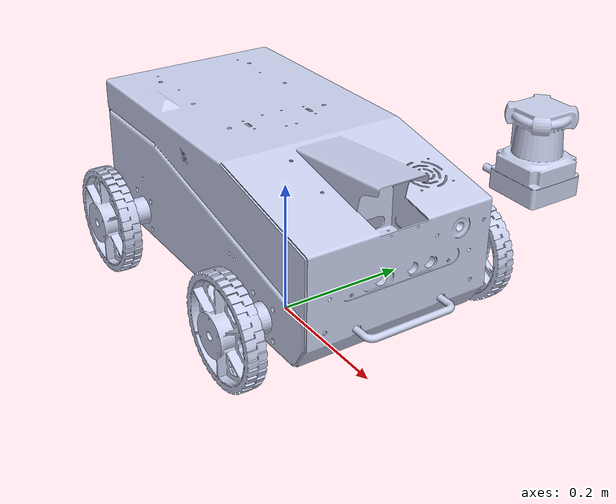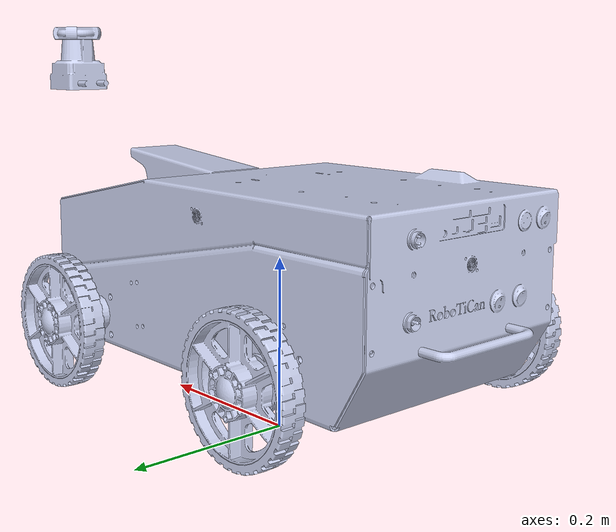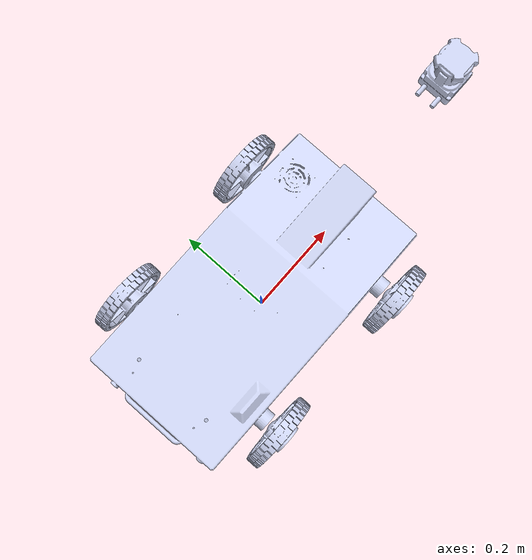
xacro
<?xml version="1.0"?>
<robot
  name="robotican_komodo" description="Komodo robot base>">

      <link name="base_footprint"/>

 <joint name="base_footprint_joint" type="fixed">
    <parent link="base_footprint"/>
    <child link="base_link"/>
    <origin xyz="0.00 0.00 0.1275" rpy="0.0 0.0 0.0"/>
  </joint>

  <link
    name="base_link">
    <inertial>
      <origin
        xyz="0.0030152 0.00057861 0.0749"
        rpy="0 0 0" />
      <mass
        value="6.0" />
      <inertia
        ixx="0.025582"
        ixy="0.0010034"
        ixz="-0.0041152"
        iyy="0.086418"
        iyz="-3.8058E-05"
        izz="0.091994" />
    </inertial>
    <visual>
      <origin
        xyz="0 0 0"
        rpy="0 0 0" />
      <geometry>
        <mesh
          filename="package://robotican_komodo/description/meshes/base_link.STL" />
      </geometry>
      <material
        name="">
        <color
          rgba="0.79216 0.81961 0.93333 1" />
      </material>
    </visual>
    <collision>
      <origin
        xyz="0 0 0"
        rpy="0 0 0" />
      <geometry>
        <mesh
          filename="package://robotican_komodo/description/meshes/base_link.STL" />
      </geometry>
    </collision>
  </link>

  <link
    name="RL_wheel_link">
    <inertial>
      <origin
        xyz="9.8684E-07 -9.3003E-05 -1.8753E-05"
        rpy="0 0 0" />
      <mass
        value="2.6829" />
      <inertia
        ixx="0.012758"
        ixy="8.7952E-09"
        ixz="-1.0406E-07"
        iyy="0.023277"
        iyz="2.0115E-06"
        izz="0.012755" />
    </inertial>
    <visual>
      <origin
        xyz="0 0 0"
        rpy="0 0 0" />
      <geometry>
        <mesh
          filename="package://robotican_komodo/description/meshes/wheel_link.STL" />
      </geometry>
      <material
        name="">
        <color
          rgba="0.79216 0.81961 0.93333 1" />
      </material>
    </visual>
    <collision>
      <origin
        xyz="0 0 0"
        rpy="${M_PI/2} 0 0" />
      <geometry>
	  <cylinder  length="0.05" radius="0.127"/>
      </geometry>
    </collision>
  </link>
  <joint
    name="RL_wheel_joint"
    type="continuous">
    <origin
      xyz="-0.165 0.18955 0"
      rpy="0 0 0" />
    <parent
      link="base_link" />
    <child
      link="RL_wheel_link" />
    <axis
      xyz="0 1 0" />
  </joint>
  <link
    name="FL_wheel_link">
    <inertial>
      <origin
        xyz="9.8687E-07 -9.3003E-05 -1.8753E-05"
        rpy="0 0 0" />
      <mass
        value="2.6829" />
      <inertia
        ixx="0.012758"
        ixy="8.7932E-09"
        ixz="-1.0406E-07"
        iyy="0.023277"
        iyz="2.0115E-06"
        izz="0.012755" />
    </inertial>
    <visual>
      <origin
        xyz="0 0 0"
        rpy="0 0 0" />
      <geometry>
        <mesh
          filename="package://robotican_komodo/description/meshes/wheel_link.STL" />
      </geometry>
      <material
        name="">
        <color
          rgba="0.79216 0.81961 0.93333 1" />
      </material>
    </visual>
    <collision>
      <origin
        xyz="0 0 0"
        rpy="${M_PI/2} 0 0" />
      <geometry>
	  <cylinder  length="0.05" radius="0.127"/>
      </geometry>
    </collision>
  </link>
  <joint
    name="FL_wheel_joint"
    type="continuous">
    <origin
      xyz="0.165 0.18955 0"
      rpy="0 0 0" />
    <parent
      link="base_link" />
    <child
      link="FL_wheel_link" />
    <axis
      xyz="0 1 0" />
  </joint>
  <link
    name="RR_wheel_link">
    <inertial>
      <origin
        xyz="-9.8675E-07 9.3004E-05 -1.8753E-05"
        rpy="0 0 0" />
      <mass
        value="2.6829" />
      <inertia
        ixx="0.012758"
        ixy="8.801E-09"
        ixz="1.0405E-07"
        iyy="0.023277"
        iyz="-2.0115E-06"
        izz="0.012755" />
    </inertial>
    <visual>
      <origin
        xyz="0 0 0"
        rpy="0 0 0" />
      <geometry>
        <mesh
          filename="package://robotican_komodo/description/meshes/wheel_link.STL" />
      </geometry>
      <material
        name="">
        <color
          rgba="0.79216 0.81961 0.93333 1" />
      </material>
    </visual>
    <collision>
      <origin
        xyz="0 0 0"
        rpy="${M_PI/2} 0 0" />
      <geometry>
	  <cylinder  length="0.05" radius="0.127"/>
      </geometry>
    </collision>
  </link>
  <joint
    name="RR_wheel_joint"
    type="continuous">
    <origin
      xyz="-0.165 -0.18955 0"
      rpy="0 0 0" />
    <parent
      link="base_link" />
    <child
      link="RR_wheel_link" />
    <axis
      xyz="0 1 0" />
  </joint>
  <link
    name="FR_wheel_link">
    <inertial>
      <origin
        xyz="-9.867E-07 9.3004E-05 -1.8753E-05"
        rpy="0 0 0" />
      <mass
        value="2.6829" />
      <inertia
        ixx="0.012758"
        ixy="8.8036E-09"
        ixz="1.0405E-07"
        iyy="0.023277"
        iyz="-2.0115E-06"
        izz="0.012755" />
    </inertial>
    <visual>
      <origin
        xyz="0 0 0"
        rpy="0 0 0" />
      <geometry>
        <mesh
          filename="package://robotican_komodo/description/meshes/wheel_link.STL" />
      </geometry>
      <material
        name="">
        <color
          rgba="0.79216 0.81961 0.93333 1" />
      </material>
    </visual>
    <collision>
      <origin
        xyz="0 0 0"
        rpy="${M_PI/2} 0 0" />
      <geometry>
	  <cylinder  length="0.05" radius="0.127"/>
      </geometry>
    </collision>
  </link>
  <joint
    name="FR_wheel_joint"
    type="continuous">
    <origin
      xyz="0.165 -0.18955 0"
      rpy="0 0 0" />
    <parent
      link="base_link" />
    <child
      link="FR_wheel_link" />
    <axis
      xyz="0 1 0" />
  </joint>
  <link
    name="laser_link" >
    <visual>
      <origin
        xyz="0 0 0.02291"
        rpy="0 0 0" />
      <material
        name="">
        <color
          rgba="0.79216 0.81961 0.93333 1" />
      </material>
      <geometry>
        <mesh
          filename="package://robotican_komodo/description/meshes/laser_link.STL" />
      </geometry>
      <material
        name="">
      </material>
    </visual>
  </link>
  <joint
    name="laser_joint"
    type="fixed">
    <origin
      xyz="0.2205 0 0.145"
      rpy="0 0 0" />
    <parent
      link="base_link" />
    <child
      link="laser_link" />
    <axis
      xyz="0 0 0" />
  </joint>
  <link
    name="front_cam_link" />
  <joint
    name="front_cam_joint"
    type="fixed">
    <origin
      xyz="0.25425 0.0875 0.1"
      rpy="0 0 0" />
    <parent
      link="base_link" />
    <child
      link="front_cam_link" />
    <axis
      xyz="0 0 0" />
  </joint>
  <link
    name="depth_camera_link" />
  <joint
    name="depth_cam_joint"
    type="fixed">
    <origin
      xyz="0.25525 0.0006082 0.063584"
      rpy="0 0 0" />
    <parent
      link="base_link" />
    <child
      link="depth_camera_link" />
    <axis
      xyz="0 0 0" />
  </joint>
  <link
    name="rear_urf_link" />
  <joint
    name="rear_urf_joint"
    type="fixed">
    <origin
      xyz="-0.2745 0 0.108"
      rpy="0 0 3.1416" />
    <parent
      link="base_link" />
    <child
      link="rear_urf_link" />
    <axis
      xyz="0 0 0" />
  </joint>
  <link
    name="right_urf_link" />
  <joint
    name="right_urf_joint"
    type="fixed">
    <origin
      xyz="-0.029313 -0.13725 0.13851"
      rpy="0 -2.0713E-16 -1.5708" />
    <parent
      link="base_link" />
    <child
      link="right_urf_link" />
    <axis
      xyz="0 0 0" />
  </joint>
  <link
    name="left_urf_link" />
  <joint
    name="left_urf_joint"
    type="fixed">
    <origin
      xyz="-0.029313 0.13725 0.13851"
      rpy="0 2.0713E-16 1.5708" />
    <parent
      link="base_link" />
    <child
      link="left_urf_link" />
    <axis
      xyz="0 0 0" />
  </joint>

<joint name="depth_camera_rgb_joint" type="fixed">
      <origin xyz="0 0.0185 0" rpy="0 0 0"/>
      <parent link="depth_camera_link"/>
      <child link="depth_camera_rgb_frame" />
    </joint>

    <link name="depth_camera_rgb_frame">
      <inertial>
	<mass value="0.001" />
	<origin xyz="0 0 0" />
	<inertia ixx="0.0001" ixy="0.0" ixz="0.0"
	  iyy="0.0001" iyz="0.0"
	  izz="0.0001" />
	</inertial>
      </link>
      <joint name="depth_camera_rgb_optical_joint" type="fixed">
	<origin xyz="0 0 0" rpy="${-M_PI/2} 0 ${-M_PI/2}" />
	<parent link="depth_camera_rgb_frame" />
	<child link="depth_camera_rgb_optical_frame" />
      </joint>

      <link name="depth_camera_rgb_optical_frame">
	<inertial>
	  <mass value="0.001" />
	  <origin xyz="0 0 0" />
	  <inertia ixx="0.0001" ixy="0.0" ixz="0.0"
	    iyy="0.0001" iyz="0.0"
	    izz="0.0001" />
	  </inertial>
	</link>

	<joint name="depth_camera_depth_joint" type="fixed">
	  <origin xyz="0 0.0445 0" rpy="0 0 0" />
	  <parent link="depth_camera_link" />
	  <child link="depth_camera_depth_frame" />
	</joint>

	<link name="depth_camera_depth_frame">
	  <inertial>
	    <mass value="0.001" />
	    <origin xyz="0 0 0" />
	    <inertia ixx="0.0001" ixy="0.0" ixz="0.0"
	      iyy="0.0001" iyz="0.0"
	      izz="0.0001" />
	    </inertial>
	  </link>

	  <joint name="depth_camera_depth_optical_joint" type="fixed">
	    <origin xyz="0 0 0" rpy="${-M_PI/2} 0 ${-M_PI/2}" />
	    <parent link="depth_camera_depth_frame" />
	    <child link="depth_camera_depth_optical_frame" />
	  </joint>
	  <link name="depth_camera_depth_optical_frame">
	    <inertial>
	      <mass value="0.001" />
	      <origin xyz="0 0 0" />
	      <inertia ixx="0.0001" ixy="0.0" ixz="0.0"
		iyy="0.0001" iyz="0.0"
		izz="0.0001" />
	      </inertial>
	    </link>

</robot>
